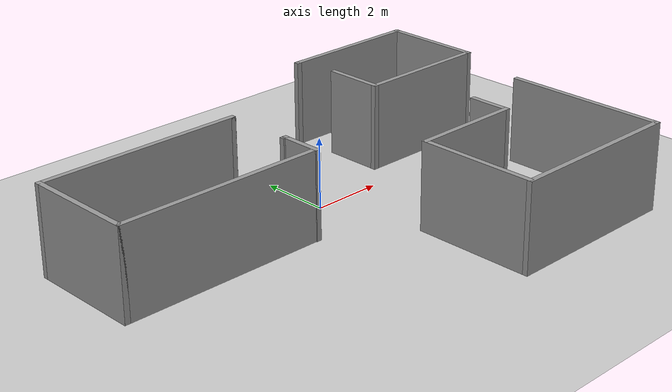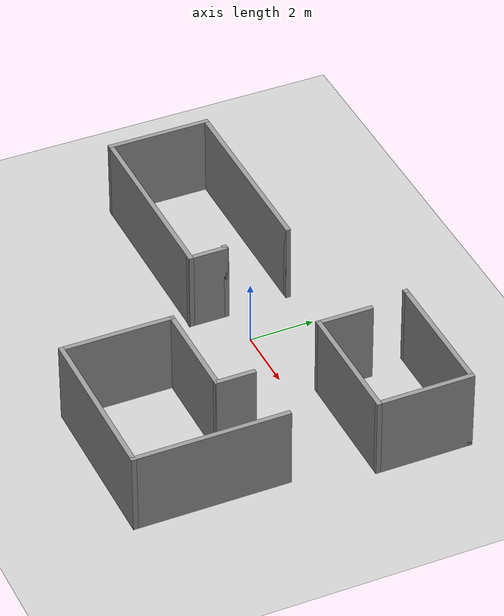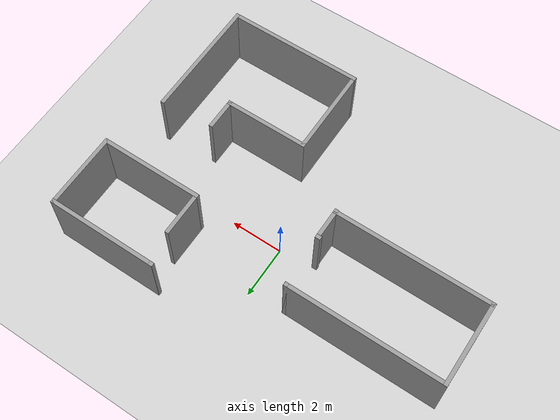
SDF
<sdf version="1.7">
 <world name="default">
  <light name="sun" type="directional">
   <pose>0 0 10 0 -0 0</pose>
   <diffuse>0.8 0.8 0.8 1</diffuse>
   <specular>0.2 0.2 0.2 1</specular>
   <attenuation>
    <range>1000</range>
    <constant>0.9</constant>
    <linear>0.01</linear>
    <quadratic>0.001</quadratic>
   </attenuation>
   <direction>-0.5 0.1 -0.9</direction>
   <spot><inner_angle>0</inner_angle><outer_angle>0</outer_angle><falloff>0</falloff></spot>
  </light>
  <model name="ground_plane">
   <static>1</static>
   <link name="link">
    <collision name="collision">
     <geometry><plane><normal>0 0 1</normal><size>100 100</size></plane></geometry>
     <surface>
      <contact><collide_bitmask>65535</collide_bitmask></contact>
      <friction><ode><mu>100</mu><mu2>50</mu2></ode></friction>
     </surface>
    </collision>
    <visual name="visual">
     <cast_shadows>0</cast_shadows>
     <geometry><plane><normal>0 0 1</normal><size>100 100</size></plane></geometry>
     <material>
      <script><uri>file://media/materials/scripts/gazebo.material</uri><name>Gazebo/Grey</name></script>
     </material>
    </visual>
   </link>
  </model>
  <gravity>0 0 -9.8</gravity>
  <magnetic_field>6e-06 2.3e-05 -4.2e-05</magnetic_field>
  <atmosphere type="adiabatic"/>
  <physics type="ode">
   <max_step_size>0.001</max_step_size>
   <real_time_factor>1</real_time_factor>
   <real_time_update_rate>1000</real_time_update_rate>
  </physics>
  <scene><ambient>0.4 0.4 0.4 1</ambient><background>0.7 0.7 0.7 1</background><shadows>1</shadows></scene>
  <spherical_coordinates>
   <surface_model>EARTH_WGS84</surface_model>
   <latitude_deg>0</latitude_deg>
   <longitude_deg>0</longitude_deg>
   <elevation>0</elevation>
   <heading_deg>0</heading_deg>
  </spherical_coordinates>
  <model name="turtlebot3_autonomous">
   <pose>-0.265264 -1.27087 0 0 -0 0</pose>
   <link name="Wall_11">
    <collision name="Wall_11_Collision">
     <geometry><box><size>6 0.15 2.5</size></box></geometry>
     <pose>0 0 1.25 0 -0 0</pose>
    </collision>
    <visual name="Wall_11_Visual">
     <pose>0 0 1.25 0 -0 0</pose>
     <geometry><box><size>6 0.15 2.5</size></box></geometry>
     <material>
      <script><uri>file://media/materials/scripts/gazebo.material</uri><name>Gazebo/Grey</name></script>
      <ambient>1 1 1 1</ambient>
     </material>
     <meta><layer>0</layer></meta>
    </visual>
    <pose>-4.06788 3.08475 0 0 -0 0</pose>
   </link>
   <link name="Wall_12">
    <collision name="Wall_12_Collision">
     <geometry><box><size>0.15 0.15 2.5</size></box></geometry>
     <pose>0 0 1.25 0 -0 0</pose>
    </collision>
    <visual name="Wall_12_Visual">
     <pose>0 0 1.25 0 -0 0</pose>
     <geometry><box><size>0.15 0.15 2.5</size></box></geometry>
     <material>
      <script><uri>file://media/materials/scripts/gazebo.material</uri><name>Gazebo/Grey</name></script>
      <ambient>1 1 1 1</ambient>
     </material>
     <meta><layer>0</layer></meta>
    </visual>
    <pose>-1.14288 3.08475 0 0 -0 0</pose>
   </link>
   <link name="Wall_14">
    <collision name="Wall_14_Collision">
     <geometry><box><size>0.16 0.15 2.5</size></box></geometry>
     <pose>0 0 1.25 0 -0 0</pose>
    </collision>
    <visual name="Wall_14_Visual">
     <pose>0 0 1.25 0 -0 0</pose>
     <geometry><box><size>0.16 0.15 2.5</size></box></geometry>
     <material>
      <script><uri>file://media/materials/scripts/gazebo.material</uri><name>Gazebo/Grey</name></script>
      <ambient>1 1 1 1</ambient>
     </material>
     <meta><layer>0</layer></meta>
    </visual>
    <pose>2.88788 4.93519 0 0 -0 0</pose>
   </link>
   <link name="Wall_15">
    <collision name="Wall_15_Collision">
     <geometry><box><size>4.25 0.15 2.5</size></box></geometry>
     <pose>0 0 1.25 0 -0 0</pose>
    </collision>
    <visual name="Wall_15_Visual">
     <pose>0 0 1.25 0 -0 0</pose>
     <geometry><box><size>4.25 0.15 2.5</size></box></geometry>
     <material>
      <script><uri>file://media/materials/scripts/gazebo.material</uri><name>Gazebo/Grey</name></script>
      <ambient>1 1 1 1</ambient>
     </material>
     <meta><layer>0</layer></meta>
    </visual>
    <pose>4.94288 4.9352 0 0 -0 0</pose>
   </link>
   <link name="Wall_16">
    <collision name="Wall_16_Collision">
     <geometry><box><size>3 0.15 2.5</size></box></geometry>
     <pose>0 0 1.25 0 -0 0</pose>
    </collision>
    <visual name="Wall_16_Visual">
     <pose>0 0 1.25 0 -0 0</pose>
     <geometry><box><size>3 0.15 2.5</size></box></geometry>
     <material>
      <script><uri>file://media/materials/scripts/gazebo.material</uri><name>Gazebo/Grey</name></script>
      <ambient>1 1 1 1</ambient>
     </material>
     <meta><layer>0</layer></meta>
    </visual>
    <pose>6.99288 3.51019 0 0 -0 -1.5708</pose>
   </link>
   <link name="Wall_17">
    <collision name="Wall_17_Collision">
     <geometry><box><size>4 0.15 2.5</size></box></geometry>
     <pose>0 0 1.25 0 -0 0</pose>
    </collision>
    <visual name="Wall_17_Visual">
     <pose>0 0 1.25 0 -0 0</pose>
     <geometry><box><size>4 0.15 2.5</size></box></geometry>
     <material>
      <script><uri>file://media/materials/scripts/gazebo.material</uri><name>Gazebo/Grey</name></script>
      <ambient>1 1 1 1</ambient>
     </material>
     <meta><layer>0</layer></meta>
    </visual>
    <pose>5.06788 2.0852 0 0 -0 3.14159</pose>
   </link>
   <link name="Wall_18">
    <collision name="Wall_18_Collision">
     <geometry><box><size>1.75 0.15 2.5</size></box></geometry>
     <pose>0 0 1.25 0 -0 0</pose>
    </collision>
    <visual name="Wall_18_Visual">
     <pose>0 0 1.25 0 -0 0</pose>
     <geometry><box><size>1.75 0.15 2.5</size></box></geometry>
     <material>
      <script><uri>file://media/materials/scripts/gazebo.material</uri><name>Gazebo/Grey</name></script>
      <ambient>1 1 1 1</ambient>
     </material>
     <meta><layer>0</layer></meta>
    </visual>
    <pose>3.14288 2.88519 0 0 -0 1.5708</pose>
   </link>
   <link name="Wall_20">
    <collision name="Wall_20_Collision">
     <geometry><box><size>4.75 0.15 2.5</size></box></geometry>
     <pose>0 0 1.25 0 -0 0</pose>
    </collision>
    <visual name="Wall_20_Visual">
     <pose>0 0 1.25 0 -0 0</pose>
     <geometry><box><size>4.75 0.15 2.5</size></box></geometry>
     <material>
      <script><uri>file://media/materials/scripts/gazebo.material</uri><name>Gazebo/Grey</name></script>
      <ambient>1 1 1 1</ambient>
     </material>
     <meta><layer>0</layer></meta>
    </visual>
    <pose>6.33629 -2.63519 0 0 -0 -1.5708</pose>
   </link>
   <link name="Wall_21">
    <collision name="Wall_21_Collision">
     <geometry><box><size>5.25 0.15 2.5</size></box></geometry>
     <pose>0 0 1.25 0 -0 0</pose>
    </collision>
    <visual name="Wall_21_Visual">
     <pose>0 0 1.25 0 -0 0</pose>
     <geometry><box><size>5.25 0.15 2.5</size></box></geometry>
     <material>
      <script><uri>file://media/materials/scripts/gazebo.material</uri><name>Gazebo/Grey</name></script>
      <ambient>1 1 1 1</ambient>
     </material>
     <meta><layer>0</layer></meta>
    </visual>
    <pose>3.78629 -4.9352 0 0 -0 3.14159</pose>
   </link>
   <link name="Wall_22">
    <collision name="Wall_22_Collision">
     <geometry><box><size>3.5 0.15 2.5</size></box></geometry>
     <pose>0 0 1.25 0 -0 0</pose>
    </collision>
    <visual name="Wall_22_Visual">
     <pose>0 0 1.25 0 -0 0</pose>
     <geometry><box><size>3.5 0.15 2.5</size></box></geometry>
     <material>
      <script><uri>file://media/materials/scripts/gazebo.material</uri><name>Gazebo/Grey</name></script>
      <ambient>1 1 1 1</ambient>
     </material>
     <meta><layer>0</layer></meta>
    </visual>
    <pose>1.23629 -3.26019 0 0 -0 1.5708</pose>
   </link>
   <link name="Wall_23">
    <collision name="Wall_23_Collision">
     <geometry><box><size>3.25 0.15 2.5</size></box></geometry>
     <pose>0 0 1.25 0 -0 0</pose>
    </collision>
    <visual name="Wall_23_Visual">
     <pose>0 0 1.25 0 -0 0</pose>
     <geometry><box><size>3.25 0.15 2.5</size></box></geometry>
     <material>
      <script><uri>file://media/materials/scripts/gazebo.material</uri><name>Gazebo/Grey</name></script>
      <ambient>1 1 1 1</ambient>
     </material>
     <meta><layer>0</layer></meta>
    </visual>
    <pose>2.78629 -1.58519 0 0 -0 0</pose>
   </link>
   <link name="Wall_24">
    <collision name="Wall_24_Collision">
     <geometry><box><size>1.25 0.15 2.5</size></box></geometry>
     <pose>0 0 1.25 0 -0 0</pose>
    </collision>
    <visual name="Wall_24_Visual">
     <pose>0 0 1.25 0 -0 0</pose>
     <geometry><box><size>1.25 0.15 2.5</size></box></geometry>
     <material>
      <script><uri>file://media/materials/scripts/gazebo.material</uri><name>Gazebo/Grey</name></script>
      <ambient>1 1 1 1</ambient>
     </material>
     <meta><layer>0</layer></meta>
    </visual>
    <pose>4.33629 -1.0352 0 0 -0 1.5708</pose>
   </link>
   <link name="Wall_5">
    <collision name="Wall_5_Collision">
     <geometry><box><size>3.25 0.15 2.5</size></box></geometry>
     <pose>0 0 1.25 0 -0 0</pose>
    </collision>
    <visual name="Wall_5_Visual">
     <pose>0 0 1.25 0 -0 0</pose>
     <geometry><box><size>3.25 0.15 2.5</size></box></geometry>
     <material>
      <script><uri>file://media/materials/scripts/gazebo.material</uri><name>Gazebo/Grey</name></script>
      <ambient>1 1 1 1</ambient>
     </material>
     <meta><layer>0</layer></meta>
    </visual>
    <pose>-6.99288 1.53475 0 0 -0 -1.5708</pose>
   </link>
   <link name="Wall_6">
    <collision name="Wall_6_Collision">
     <geometry><box><size>0.16 0.15 2.5</size></box></geometry>
     <pose>0 0 1.25 0 -0 0</pose>
    </collision>
    <visual name="Wall_6_Visual">
     <pose>0 0 1.25 0 -0 0</pose>
     <geometry><box><size>0.16 0.15 2.5</size></box></geometry>
     <material>
      <script><uri>file://media/materials/scripts/gazebo.material</uri><name>Gazebo/Grey</name></script>
      <ambient>1 1 1 1</ambient>
     </material>
     <meta><layer>0</layer></meta>
    </visual>
    <pose>-6.98788 -0.015254 0 0 -0 0</pose>
   </link>
   <link name="Wall_7">
    <collision name="Wall_7_Collision">
     <geometry><box><size>6.06037 0.15 2.5</size></box></geometry>
     <pose>0 0 1.25 0 -0 0</pose>
    </collision>
    <visual name="Wall_7_Visual">
     <pose>0 0 1.25 0 -0 0</pose>
     <geometry><box><size>6.06037 0.15 2.5</size></box></geometry>
     <material>
      <script><uri>file://media/materials/scripts/gazebo.material</uri><name>Gazebo/Grey</name></script>
      <ambient>1 1 1 1</ambient>
     </material>
     <meta><layer>0</layer></meta>
    </visual>
    <pose>-4.02771 -0.015254 0 0 -0 0</pose>
   </link>
   <link name="Wall_8">
    <collision name="Wall_8_Collision">
     <geometry><box><size>1.25 0.15 2.5</size></box></geometry>
     <pose>0 0 1.25 0 -0 0</pose>
    </collision>
    <visual name="Wall_8_Visual">
     <pose>0 0 1.25 0 -0 0</pose>
     <geometry><box><size>1.25 0.15 2.5</size></box></geometry>
     <material>
      <script><uri>file://media/materials/scripts/gazebo.material</uri><name>Gazebo/Grey</name></script>
      <ambient>1 1 1 1</ambient>
     </material>
     <meta><layer>0</layer></meta>
    </visual>
    <pose>-1.07254 0.514633 0 0 -0 1.5708</pose>
   </link>
   <link name="Wall_9">
    <collision name="Wall_9_Collision">
     <geometry><box><size>0.200341 0.15 2.5</size></box></geometry>
     <pose>0 0 1.25 0 -0 0</pose>
    </collision>
    <visual name="Wall_9_Visual">
     <pose>0 0 1.25 0 -0 0</pose>
     <geometry><box><size>0.200341 0.15 2.5</size></box></geometry>
     <material>
      <script><uri>file://media/materials/scripts/gazebo.material</uri><name>Gazebo/Grey</name></script>
      <ambient>1 1 1 1</ambient>
     </material>
     <meta><layer>0</layer></meta>
    </visual>
    <pose>-1.09771 1.08475 0 0 -0 -3.14159</pose>
   </link>
   <static>1</static>
  </model>
 </world>
</sdf>
